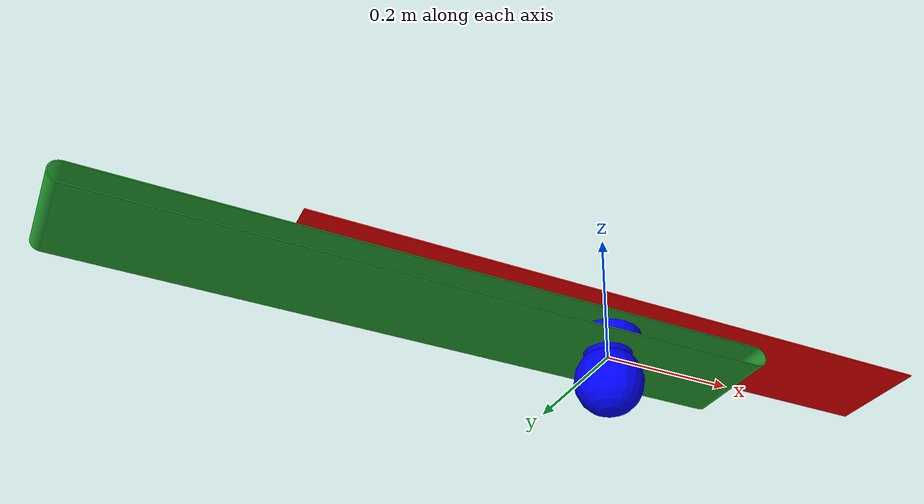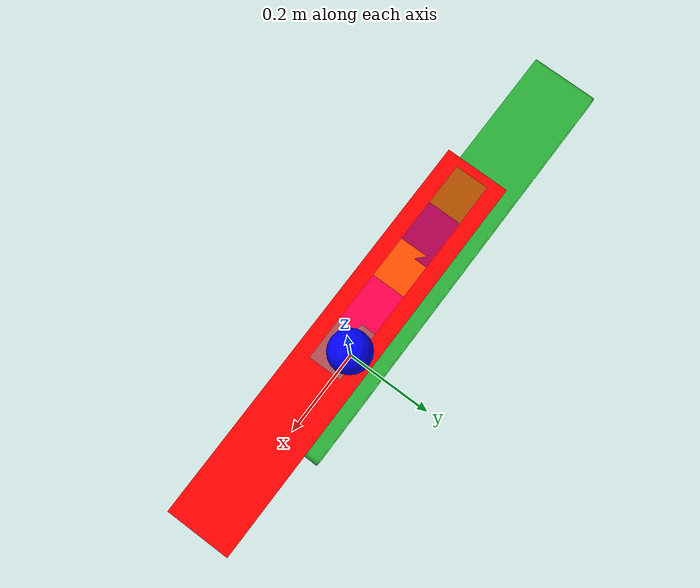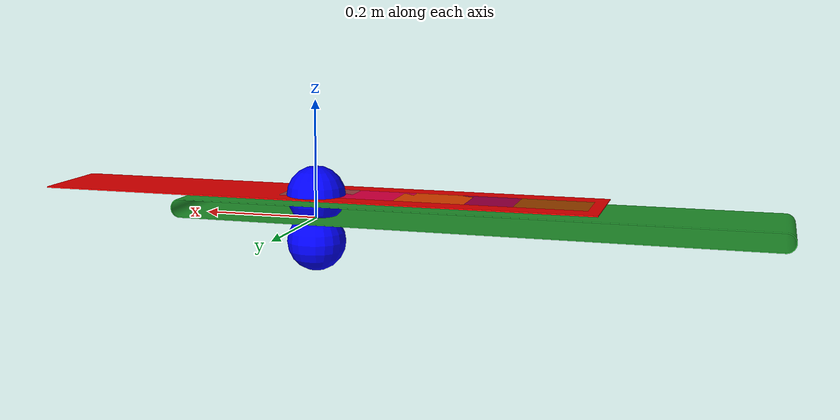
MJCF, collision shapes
<mujoco model="conveyor_belt">
    <size njmax="500" nconmax="100" />
    <asset>
      <mesh name="mesh_belt" file="belt.obj" scale="0.2 0.2 0.2" />
      <mesh name="mesh_fixtures" file="fixtures.obj" scale="0.2 0.2 0.2"/>

      <texture name="tex_pvc_green" type="2d" file="pvc_green.png" />
      <texture name="tex_metal" type="2d" file="metal.png" />
      <material name="mat_belt_pvc" texture="tex_pvc_green" reflectance="0.1" rgba="1 1 1 1"/>
      <material name="mat_roller_metal" texture="tex_metal" reflectance="0.9" rgba="1 1 1 1"/>
    </asset>

<worldbody>
    <body>
      <body name="object">
        <body name="conveyor_belt" pos="0 0 0.0196" quat="0.7071067811865476 0 0 -0.7071067811865476">
          <joint name="belt_hinge" type="hinge" axis="0 1 0" pos="0 0 0.1" />
          <inertial pos="0 0 0" mass="1000" diaginertia="1000 1000 1000" />
          <geom solimp="0.998 0.998 0.001" solref="0.001 1" density="100" type="mesh" mesh="mesh_belt" material="mat_belt_pvc" group="1" friction="1.0 0.05 0.01" contype="1" conaffinity="1" pos="0 0 0"/>
          <geom solimp="0.998 0.998 0.001" solref="0.001 1" density="100" type="mesh" mesh="mesh_fixtures" material="mat_roller_metal" group="1" friction="0.6 0.005 0.001" contype="0" conaffinity="0" pos="0 0 0"/>
          <geom name="contact_region" type="box" size="0.0768 0.4804 0.001" pos="0.02 0 0.0195" quat="1 0 0 0" rgba="1 0 0 1" group='0'/>
          <site name="contact_region" type="box" size="0.0768 0.4804 0.001" pos="0.02 0 0.0195" quat="1 0 0 0" rgba="1 0 0 0" group='0'/>
          <site name="offset_region_1" type="box" size="0.04 0.06 0.001" pos="0.02 -0.4 0.0196" quat="1 0 0 0" rgba="0 1 0 0.3" group='0'/>
          <site name="offset_region_2" type="box" size="0.04 0.06 0.001" pos="0.02 -0.3 0.0196" quat="1 0 0 0" rgba="0 0 1 0.3" group='0'/>
          <site name="offset_region_3" type="box" size="0.04 0.06 0.001" pos="0.02 -0.2 0.0196" quat="1 0 0 0" rgba="1 1 0 0.3" group='0'/>
          <site name="offset_region_4" type="box" size="0.04 0.06 0.001" pos="0.02 -0.1 0.0196" quat="1 0 0 0" rgba="1 0 1 0.3" group='0'/>
          <site name="offset_region_5" type="box" size="0.04 0.06 0.001" pos="0.02 0.0 0.0196" quat="1 0 0 0" rgba="0 1 1 0.3" group='0'/>
          <site name="stack_region_1" type="box" size="0.04 0.06 0.001" pos="0.02 -0.4 0.0196" quat="1 0 0 0" rgba="0 1 0 0.3" group='0'/>
          <site name="stack_region_2" type="box" size="0.04 0.06 0.001" pos="0.02 -0.4 0.0196" quat="1 0 0 0" rgba="0 0 1 0.3" group='0'/>
          <site name="stack_region_3" type="box" size="0.04 0.06 0.001" pos="0.02 -0.4 0.0196" quat="1 0 0 0" rgba="1 1 0 0.3" group='0'/>
          <site name="stack_region_4" type="box" size="0.04 0.06 0.001" pos="0.02 -0.4 0.0196" quat="1 0 0 0" rgba="1 0 1 0.3" group='0'/>
          <site name="stack_region_5" type="box" size="0.04 0.06 0.001" pos="0.02 -0.4 0.0196" quat="1 0 0 0" rgba="0 1 1 0.3" group='0'/>
        </body>
      </body>

      <!-- REQUIRED SITES for MujocoXMLObject -->
      <site rgba="0 0 1 1" size="0.05" pos="0 0 -0.0392" name="bottom_site"/>
      <site rgba="0 0 1 1" size="0.05" pos="0 0 0.0392" name="top_site"/>
      <site rgba="0 0 0 0" size="0.05" pos="0 0 0.0196" name="horizontal_radius_site"/>
    </body>
  </worldbody>

</mujoco>
